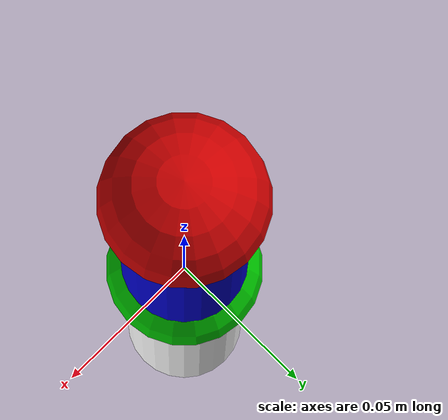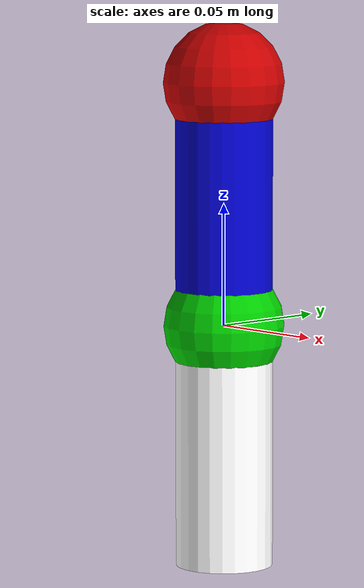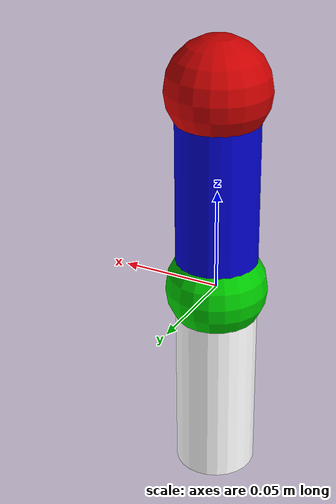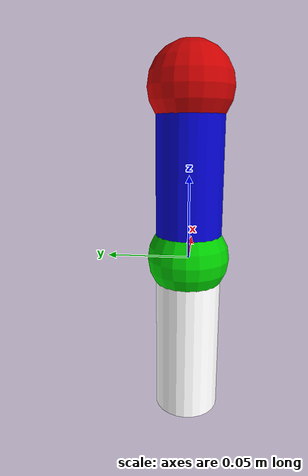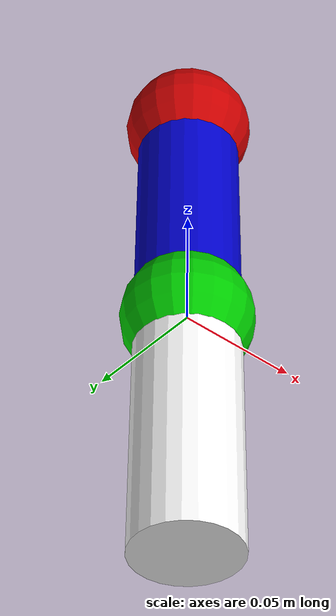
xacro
<?xml version="1.0"?>
<robot xmlns:xacro="http://www.ros.org/wiki/xacro" name="double_arm_robot">

    <material name="blue"><color rgba="0 0 0.8 1"/></material>
    <material name="red"><color rgba="0.8 0 0 1"/></material>
    <material name="green"><color rgba="0 0.8 0 1"/></material>
    <material name="white"><color rgba="1 1 1 1"/></material>

    <link name="world"/>

    <joint name="world_to_sphere1" type="fixed">
        <parent link="world"/>
        <child link="sphere_link_1"/>
        <origin xyz="0 0 0.1" rpy="0 0 0"/>
    </joint>

    <link name="sphere_link_1">
        <visual>
            <geometry><sphere radius="0.025"/></geometry>
            <material name="red"/>
        </visual>
    </link>

    <joint name="joint_1" type="continuous">
        <parent link="sphere_link_1"/>
        <child link="cylinder_link_1"/>
        <origin xyz="0 0 0" rpy="0 0 0"/>
        <axis xyz="0 1 0"/>
    </joint>

    <link name="cylinder_link_1">
        <visual>
            <geometry><cylinder radius="0.02" length="0.1"/></geometry>
            <origin xyz="0 0 -0.05" rpy="0 0 0"/>
            <material name="blue"/>
        </visual>
    </link>

    <joint name="cylinder_1_to_sphere_2" type="fixed">
        <parent link="cylinder_link_1"/>
        <child link="sphere_link_2"/>
        <origin xyz="0 0 -0.1" rpy="0 0 0"/>
    </joint>

    <link name="sphere_link_2">
        <visual>
            <geometry><sphere radius="0.025"/></geometry>
            <material name="green"/>
        </visual>
    </link>

    <joint name="joint_2" type="continuous">
        <parent link="sphere_link_2"/>
        <child link="cylinder_link_2"/>
        <origin xyz="0 0 0" rpy="0 0 0"/>
        <axis xyz="0 1 0"/>
    </joint>

    <link name="cylinder_link_2">
        <visual>
            <geometry><cylinder radius="0.02" length="0.1"/></geometry>
            <origin xyz="0 0 -0.05" rpy="0 0 0"/>
            <material name="white"/>
        </visual>
    </link>

</robot>
